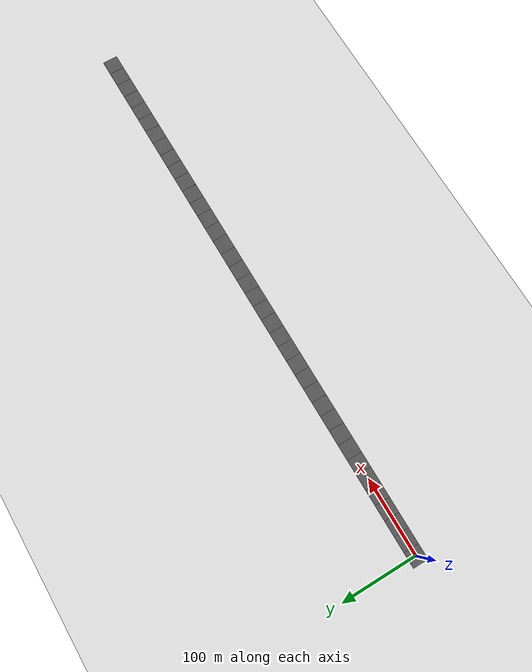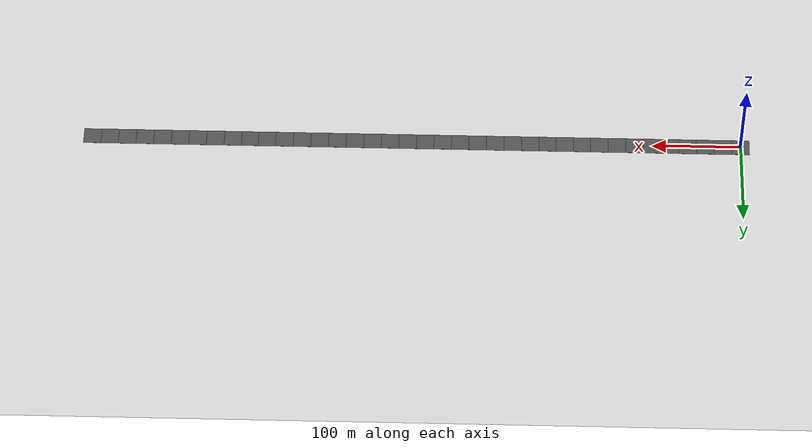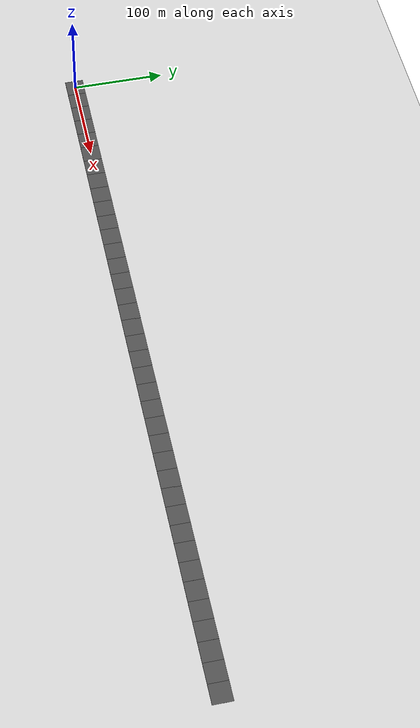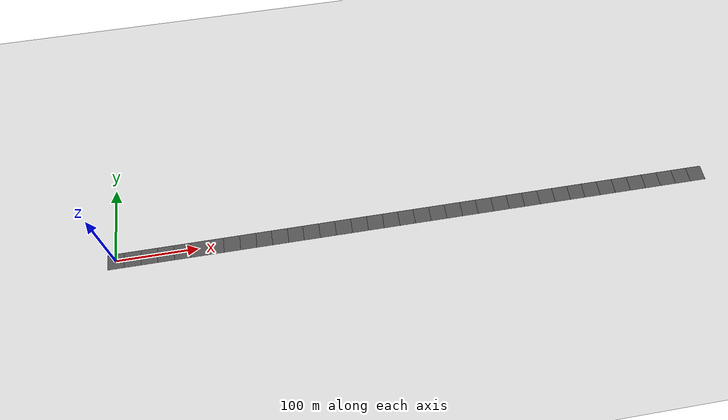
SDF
<sdf version="1.4">
 <world name="default">
  <light name="sun" type="directional">
   <pose>0 0 10 0 -0 0</pose>
   <diffuse>0.8 0.8 0.8 1</diffuse>
   <specular>0.2 0.2 0.2 1</specular>
   <attenuation>
    <range>1000</range>
    <constant>0.9</constant>
    <linear>0.01</linear>
    <quadratic>0.001</quadratic>
   </attenuation>
   <direction>-0.5 0.1 -0.9</direction>
  </light>
  <model name="ground_plane">
   <static>1</static>
   <link name="link">
    <collision name="collision">
     <geometry><plane><normal>0 0 1</normal><size>100 100</size></plane></geometry>
     <surface><friction><ode><mu>100</mu><mu2>50</mu2></ode></friction></surface>
    </collision>
    <visual name="visual">
     <cast_shadows>0</cast_shadows>
     <geometry><plane><normal>0 0 1</normal><size>100 100</size></plane></geometry>
     <material>
      <script><uri>file://media/materials/scripts/gazebo.material</uri><name>Gazebo/Grey</name></script>
     </material>
    </visual>
    <velocity_decay><linear>0</linear><angular>0</angular></velocity_decay>
   </link>
  </model>
  <physics type="ode">
   <max_step_size>0.001</max_step_size>
   <real_time_factor>1</real_time_factor>
   <real_time_update_rate>1000</real_time_update_rate>
   <gravity>0 0 -9.8</gravity>
  </physics>
  <scene><ambient>0.4 0.4 0.4 1</ambient><background>0.7 0.7 0.7 1</background><shadows>1</shadows></scene>
  <spherical_coordinates>
   <surface_model>EARTH_WGS84</surface_model>
   <latitude_deg>0</latitude_deg>
   <longitude_deg>0</longitude_deg>
   <elevation>0</elevation>
   <heading_deg>0</heading_deg>
  </spherical_coordinates>
  <model name="asphalt_plane">
   <static>1</static>
   <link name="link">
    <collision name="collision"><geometry><box><size>20 20 0.1</size></box></geometry></collision>
    <visual name="visual">
     <cast_shadows>0</cast_shadows>
     <geometry><box><size>20 20 0.1</size></box></geometry>
     <material>
      <script>
       <uri>model://asphalt_plane/materials/scripts</uri>
       <uri>model://asphalt_plane/materials/textures</uri>
       <name>vrc/asphalt</name>
      </script>
     </material>
    </visual>
    <velocity_decay><linear>0</linear><angular>0</angular></velocity_decay>
   </link>
  </model>
  <model name="asphalt_plane_0">
   <static>1</static>
   <link name="link">
    <collision name="collision"><geometry><box><size>20 20 0.1</size></box></geometry></collision>
    <visual name="visual">
     <cast_shadows>0</cast_shadows>
     <geometry><box><size>20 20 0.1</size></box></geometry>
     <material>
      <script>
       <uri>model://asphalt_plane/materials/scripts</uri>
       <uri>model://asphalt_plane/materials/textures</uri>
       <name>vrc/asphalt</name>
      </script>
     </material>
    </visual>
    <velocity_decay><linear>0</linear><angular>0</angular></velocity_decay>
   </link>
   <pose>20 0 0 0 -0 0</pose>
  </model>
  <light name="sun" type="directional">
   <pose>-4.56059 5 10 0 -0 0</pose>
   <diffuse>0.8 0.8 0.8 1</diffuse>
   <specular>0.2 0.2 0.2 1</specular>
   <attenuation>
    <range>1000</range>
    <constant>0.9</constant>
    <linear>0.01</linear>
    <quadratic>0.001</quadratic>
   </attenuation>
   <direction>-0.5 0.1 -0.9</direction>
  </light>
  <model name="asphalt_plane_8">
   <static>1</static>
   <link name="link">
    <collision name="collision"><geometry><box><size>20 20 0.1</size></box></geometry></collision>
    <visual name="visual">
     <cast_shadows>0</cast_shadows>
     <geometry><box><size>20 20 0.1</size></box></geometry>
     <material>
      <script>
       <uri>model://asphalt_plane/materials/scripts</uri>
       <uri>model://asphalt_plane/materials/textures</uri>
       <name>vrc/asphalt</name>
      </script>
     </material>
    </visual>
    <velocity_decay><linear>0</linear><angular>0</angular></velocity_decay>
   </link>
   <pose>40 0 0 0 -0 0</pose>
  </model>
  <model name="asphalt_plane_7">
   <static>1</static>
   <link name="link">
    <collision name="collision"><geometry><box><size>20 20 0.1</size></box></geometry></collision>
    <visual name="visual">
     <cast_shadows>0</cast_shadows>
     <geometry><box><size>20 20 0.1</size></box></geometry>
     <material>
      <script>
       <uri>model://asphalt_plane/materials/scripts</uri>
       <uri>model://asphalt_plane/materials/textures</uri>
       <name>vrc/asphalt</name>
      </script>
     </material>
    </visual>
    <velocity_decay><linear>0</linear><angular>0</angular></velocity_decay>
   </link>
   <pose>60 0 0 0 -0 0</pose>
  </model>
  <model name="asphalt_plane_26">
   <static>1</static>
   <link name="link">
    <collision name="collision"><geometry><box><size>20 20 0.1</size></box></geometry></collision>
    <visual name="visual">
     <cast_shadows>0</cast_shadows>
     <geometry><box><size>20 20 0.1</size></box></geometry>
     <material>
      <script>
       <uri>model://asphalt_plane/materials/scripts</uri>
       <uri>model://asphalt_plane/materials/textures</uri>
       <name>vrc/asphalt</name>
      </script>
     </material>
    </visual>
    <velocity_decay><linear>0</linear><angular>0</angular></velocity_decay>
   </link>
   <pose>80 0 0 0 -0 0</pose>
  </model>
  <model name="asphalt_plane_27">
   <static>1</static>
   <link name="link">
    <collision name="collision"><geometry><box><size>20 20 0.1</size></box></geometry></collision>
    <visual name="visual">
     <cast_shadows>0</cast_shadows>
     <geometry><box><size>20 20 0.1</size></box></geometry>
     <material>
      <script>
       <uri>model://asphalt_plane/materials/scripts</uri>
       <uri>model://asphalt_plane/materials/textures</uri>
       <name>vrc/asphalt</name>
      </script>
     </material>
    </visual>
    <velocity_decay><linear>0</linear><angular>0</angular></velocity_decay>
   </link>
   <pose>100 0 0 0 -0 0</pose>
  </model>
  <model name="asphalt_plane_28">
   <static>1</static>
   <link name="link">
    <collision name="collision"><geometry><box><size>20 20 0.1</size></box></geometry></collision>
    <visual name="visual">
     <cast_shadows>0</cast_shadows>
     <geometry><box><size>20 20 0.1</size></box></geometry>
     <material>
      <script>
       <uri>model://asphalt_plane/materials/scripts</uri>
       <uri>model://asphalt_plane/materials/textures</uri>
       <name>vrc/asphalt</name>
      </script>
     </material>
    </visual>
    <velocity_decay><linear>0</linear><angular>0</angular></velocity_decay>
   </link>
   <pose>120 0 0 0 -0 0</pose>
  </model>
  <model name="asphalt_plane_29">
   <static>1</static>
   <link name="link">
    <collision name="collision"><geometry><box><size>20 20 0.1</size></box></geometry></collision>
    <visual name="visual">
     <cast_shadows>0</cast_shadows>
     <geometry><box><size>20 20 0.1</size></box></geometry>
     <material>
      <script>
       <uri>model://asphalt_plane/materials/scripts</uri>
       <uri>model://asphalt_plane/materials/textures</uri>
       <name>vrc/asphalt</name>
      </script>
     </material>
    </visual>
    <velocity_decay><linear>0</linear><angular>0</angular></velocity_decay>
   </link>
   <pose>140 0 0 0 -0 0</pose>
  </model>
  <model name="asphalt_plane_30">
   <static>1</static>
   <link name="link">
    <collision name="collision"><geometry><box><size>20 20 0.1</size></box></geometry></collision>
    <visual name="visual">
     <cast_shadows>0</cast_shadows>
     <geometry><box><size>20 20 0.1</size></box></geometry>
     <material>
      <script>
       <uri>model://asphalt_plane/materials/scripts</uri>
       <uri>model://asphalt_plane/materials/textures</uri>
       <name>vrc/asphalt</name>
      </script>
     </material>
    </visual>
    <velocity_decay><linear>0</linear><angular>0</angular></velocity_decay>
   </link>
   <pose>160 0 0 0 -0 0</pose>
  </model>
  <model name="asphalt_plane_31">
   <static>1</static>
   <link name="link">
    <collision name="collision"><geometry><box><size>20 20 0.1</size></box></geometry></collision>
    <visual name="visual">
     <cast_shadows>0</cast_shadows>
     <geometry><box><size>20 20 0.1</size></box></geometry>
     <material>
      <script>
       <uri>model://asphalt_plane/materials/scripts</uri>
       <uri>model://asphalt_plane/materials/textures</uri>
       <name>vrc/asphalt</name>
      </script>
     </material>
    </visual>
    <velocity_decay><linear>0</linear><angular>0</angular></velocity_decay>
   </link>
   <pose>179.529 0 0 0 -0 0</pose>
  </model>
  <model name="asphalt_plane_32">
   <static>1</static>
   <link name="link">
    <collision name="collision"><geometry><box><size>20 20 0.1</size></box></geometry></collision>
    <visual name="visual">
     <cast_shadows>0</cast_shadows>
     <geometry><box><size>20 20 0.1</size></box></geometry>
     <material>
      <script>
       <uri>model://asphalt_plane/materials/scripts</uri>
       <uri>model://asphalt_plane/materials/textures</uri>
       <name>vrc/asphalt</name>
      </script>
     </material>
    </visual>
    <velocity_decay><linear>0</linear><angular>0</angular></velocity_decay>
   </link>
   <pose>199 0 0 0 -0 0</pose>
  </model>
  <model name="asphalt_plane_33">
   <static>1</static>
   <link name="link">
    <collision name="collision"><geometry><box><size>20 20 0.1</size></box></geometry></collision>
    <visual name="visual">
     <cast_shadows>0</cast_shadows>
     <geometry><box><size>20 20 0.1</size></box></geometry>
     <material>
      <script>
       <uri>model://asphalt_plane/materials/scripts</uri>
       <uri>model://asphalt_plane/materials/textures</uri>
       <name>vrc/asphalt</name>
      </script>
     </material>
    </visual>
    <velocity_decay><linear>0</linear><angular>0</angular></velocity_decay>
   </link>
   <pose>218 0 0 0 -0 0</pose>
  </model>
  <model name="asphalt_plane_34">
   <static>1</static>
   <link name="link">
    <collision name="collision"><geometry><box><size>20 20 0.1</size></box></geometry></collision>
    <visual name="visual">
     <cast_shadows>0</cast_shadows>
     <geometry><box><size>20 20 0.1</size></box></geometry>
     <material>
      <script>
       <uri>model://asphalt_plane/materials/scripts</uri>
       <uri>model://asphalt_plane/materials/textures</uri>
       <name>vrc/asphalt</name>
      </script>
     </material>
    </visual>
    <velocity_decay><linear>0</linear><angular>0</angular></velocity_decay>
   </link>
   <pose>238 0 0 0 -0 0</pose>
  </model>
  <model name="asphalt_plane_35">
   <static>1</static>
   <link name="link">
    <collision name="collision"><geometry><box><size>20 20 0.1</size></box></geometry></collision>
    <visual name="visual">
     <cast_shadows>0</cast_shadows>
     <geometry><box><size>20 20 0.1</size></box></geometry>
     <material>
      <script>
       <uri>model://asphalt_plane/materials/scripts</uri>
       <uri>model://asphalt_plane/materials/textures</uri>
       <name>vrc/asphalt</name>
      </script>
     </material>
    </visual>
    <velocity_decay><linear>0</linear><angular>0</angular></velocity_decay>
   </link>
   <pose>258 0 0 0 -0 0</pose>
  </model>
  <model name="asphalt_plane_36">
   <static>1</static>
   <link name="link">
    <collision name="collision"><geometry><box><size>20 20 0.1</size></box></geometry></collision>
    <visual name="visual">
     <cast_shadows>0</cast_shadows>
     <geometry><box><size>20 20 0.1</size></box></geometry>
     <material>
      <script>
       <uri>model://asphalt_plane/materials/scripts</uri>
       <uri>model://asphalt_plane/materials/textures</uri>
       <name>vrc/asphalt</name>
      </script>
     </material>
    </visual>
    <velocity_decay><linear>0</linear><angular>0</angular></velocity_decay>
   </link>
   <pose>278 0 0 0 -0 0</pose>
  </model>
  <model name="asphalt_plane_37">
   <static>1</static>
   <link name="link">
    <collision name="collision"><geometry><box><size>20 20 0.1</size></box></geometry></collision>
    <visual name="visual">
     <cast_shadows>0</cast_shadows>
     <geometry><box><size>20 20 0.1</size></box></geometry>
     <material>
      <script>
       <uri>model://asphalt_plane/materials/scripts</uri>
       <uri>model://asphalt_plane/materials/textures</uri>
       <name>vrc/asphalt</name>
      </script>
     </material>
    </visual>
    <velocity_decay><linear>0</linear><angular>0</angular></velocity_decay>
   </link>
   <pose>298 0 0 0 -0 0</pose>
  </model>
  <model name="asphalt_plane_38">
   <static>1</static>
   <link name="link">
    <collision name="collision"><geometry><box><size>20 20 0.1</size></box></geometry></collision>
    <visual name="visual">
     <cast_shadows>0</cast_shadows>
     <geometry><box><size>20 20 0.1</size></box></geometry>
     <material>
      <script>
       <uri>model://asphalt_plane/materials/scripts</uri>
       <uri>model://asphalt_plane/materials/textures</uri>
       <name>vrc/asphalt</name>
      </script>
     </material>
    </visual>
    <velocity_decay><linear>0</linear><angular>0</angular></velocity_decay>
   </link>
   <pose>318 0 0 0 -0 0</pose>
  </model>
  <model name="asphalt_plane_39">
   <static>1</static>
   <link name="link">
    <collision name="collision"><geometry><box><size>20 20 0.1</size></box></geometry></collision>
    <visual name="visual">
     <cast_shadows>0</cast_shadows>
     <geometry><box><size>20 20 0.1</size></box></geometry>
     <material>
      <script>
       <uri>model://asphalt_plane/materials/scripts</uri>
       <uri>model://asphalt_plane/materials/textures</uri>
       <name>vrc/asphalt</name>
      </script>
     </material>
    </visual>
    <velocity_decay><linear>0</linear><angular>0</angular></velocity_decay>
   </link>
   <pose>337.506 0 0 0 -0 0</pose>
  </model>
  <model name="asphalt_plane_40">
   <static>1</static>
   <link name="link">
    <collision name="collision"><geometry><box><size>20 20 0.1</size></box></geometry></collision>
    <visual name="visual">
     <cast_shadows>0</cast_shadows>
     <geometry><box><size>20 20 0.1</size></box></geometry>
     <material>
      <script>
       <uri>model://asphalt_plane/materials/scripts</uri>
       <uri>model://asphalt_plane/materials/textures</uri>
       <name>vrc/asphalt</name>
      </script>
     </material>
    </visual>
    <velocity_decay><linear>0</linear><angular>0</angular></velocity_decay>
   </link>
   <pose>357.494 0 0 0 -0 0</pose>
  </model>
  <model name="asphalt_plane_41">
   <static>1</static>
   <link name="link">
    <collision name="collision"><geometry><box><size>20 20 0.1</size></box></geometry></collision>
    <visual name="visual">
     <cast_shadows>0</cast_shadows>
     <geometry><box><size>20 20 0.1</size></box></geometry>
     <material>
      <script>
       <uri>model://asphalt_plane/materials/scripts</uri>
       <uri>model://asphalt_plane/materials/textures</uri>
       <name>vrc/asphalt</name>
      </script>
     </material>
    </visual>
    <velocity_decay><linear>0</linear><angular>0</angular></velocity_decay>
   </link>
   <pose>377 0 0 0 -0 0</pose>
  </model>
  <model name="asphalt_plane_42">
   <static>1</static>
   <link name="link">
    <collision name="collision"><geometry><box><size>20 20 0.1</size></box></geometry></collision>
    <visual name="visual">
     <cast_shadows>0</cast_shadows>
     <geometry><box><size>20 20 0.1</size></box></geometry>
     <material>
      <script>
       <uri>model://asphalt_plane/materials/scripts</uri>
       <uri>model://asphalt_plane/materials/textures</uri>
       <name>vrc/asphalt</name>
      </script>
     </material>
    </visual>
    <velocity_decay><linear>0</linear><angular>0</angular></velocity_decay>
   </link>
   <pose>397 0 0 0 -0 0</pose>
  </model>
  <model name="asphalt_plane_43">
   <static>1</static>
   <link name="link">
    <collision name="collision"><geometry><box><size>20 20 0.1</size></box></geometry></collision>
    <visual name="visual">
     <cast_shadows>0</cast_shadows>
     <geometry><box><size>20 20 0.1</size></box></geometry>
     <material>
      <script>
       <uri>model://asphalt_plane/materials/scripts</uri>
       <uri>model://asphalt_plane/materials/textures</uri>
       <name>vrc/asphalt</name>
      </script>
     </material>
    </visual>
    <velocity_decay><linear>0</linear><angular>0</angular></velocity_decay>
   </link>
   <pose>417 0 0 0 -0 0</pose>
  </model>
  <model name="asphalt_plane_44">
   <static>1</static>
   <link name="link">
    <collision name="collision"><geometry><box><size>20 20 0.1</size></box></geometry></collision>
    <visual name="visual">
     <cast_shadows>0</cast_shadows>
     <geometry><box><size>20 20 0.1</size></box></geometry>
     <material>
      <script>
       <uri>model://asphalt_plane/materials/scripts</uri>
       <uri>model://asphalt_plane/materials/textures</uri>
       <name>vrc/asphalt</name>
      </script>
     </material>
    </visual>
    <velocity_decay><linear>0</linear><angular>0</angular></velocity_decay>
   </link>
   <pose>437 0 0 0 -0 0</pose>
  </model>
  <model name="asphalt_plane_45">
   <static>1</static>
   <link name="link">
    <collision name="collision"><geometry><box><size>20 20 0.1</size></box></geometry></collision>
    <visual name="visual">
     <cast_shadows>0</cast_shadows>
     <geometry><box><size>20 20 0.1</size></box></geometry>
     <material>
      <script>
       <uri>model://asphalt_plane/materials/scripts</uri>
       <uri>model://asphalt_plane/materials/textures</uri>
       <name>vrc/asphalt</name>
      </script>
     </material>
    </visual>
    <velocity_decay><linear>0</linear><angular>0</angular></velocity_decay>
   </link>
   <pose>457 0 0 0 -0 0</pose>
  </model>
  <model name="asphalt_plane_46">
   <static>1</static>
   <link name="link">
    <collision name="collision"><geometry><box><size>20 20 0.1</size></box></geometry></collision>
    <visual name="visual">
     <cast_shadows>0</cast_shadows>
     <geometry><box><size>20 20 0.1</size></box></geometry>
     <material>
      <script>
       <uri>model://asphalt_plane/materials/scripts</uri>
       <uri>model://asphalt_plane/materials/textures</uri>
       <name>vrc/asphalt</name>
      </script>
     </material>
    </visual>
    <velocity_decay><linear>0</linear><angular>0</angular></velocity_decay>
   </link>
   <pose>477 0 0 0 -0 0</pose>
  </model>
  <model name="asphalt_plane_47">
   <static>1</static>
   <link name="link">
    <collision name="collision"><geometry><box><size>20 20 0.1</size></box></geometry></collision>
    <visual name="visual">
     <cast_shadows>0</cast_shadows>
     <geometry><box><size>20 20 0.1</size></box></geometry>
     <material>
      <script>
       <uri>model://asphalt_plane/materials/scripts</uri>
       <uri>model://asphalt_plane/materials/textures</uri>
       <name>vrc/asphalt</name>
      </script>
     </material>
    </visual>
    <velocity_decay><linear>0</linear><angular>0</angular></velocity_decay>
   </link>
   <pose>497 0 0 0 -0 0</pose>
  </model>
  <model name="asphalt_plane_48">
   <static>1</static>
   <link name="link">
    <collision name="collision"><geometry><box><size>20 20 0.1</size></box></geometry></collision>
    <visual name="visual">
     <cast_shadows>0</cast_shadows>
     <geometry><box><size>20 20 0.1</size></box></geometry>
     <material>
      <script>
       <uri>model://asphalt_plane/materials/scripts</uri>
       <uri>model://asphalt_plane/materials/textures</uri>
       <name>vrc/asphalt</name>
      </script>
     </material>
    </visual>
    <velocity_decay><linear>0</linear><angular>0</angular></velocity_decay>
   </link>
   <pose>517 0 0 0 -0 0</pose>
  </model>
  <model name="asphalt_plane_49">
   <static>1</static>
   <link name="link">
    <collision name="collision"><geometry><box><size>20 20 0.1</size></box></geometry></collision>
    <visual name="visual">
     <cast_shadows>0</cast_shadows>
     <geometry><box><size>20 20 0.1</size></box></geometry>
     <material>
      <script>
       <uri>model://asphalt_plane/materials/scripts</uri>
       <uri>model://asphalt_plane/materials/textures</uri>
       <name>vrc/asphalt</name>
      </script>
     </material>
    </visual>
    <velocity_decay><linear>0</linear><angular>0</angular></velocity_decay>
   </link>
   <pose>536.513 0 0 0 -0 0</pose>
  </model>
  <model name="asphalt_plane_50">
   <static>1</static>
   <link name="link">
    <collision name="collision"><geometry><box><size>20 20 0.1</size></box></geometry></collision>
    <visual name="visual">
     <cast_shadows>0</cast_shadows>
     <geometry><box><size>20 20 0.1</size></box></geometry>
     <material>
      <script>
       <uri>model://asphalt_plane/materials/scripts</uri>
       <uri>model://asphalt_plane/materials/textures</uri>
       <name>vrc/asphalt</name>
      </script>
     </material>
    </visual>
    <velocity_decay><linear>0</linear><angular>0</angular></velocity_decay>
   </link>
   <pose>556.477 0 0 0 -0 0</pose>
  </model>
  <model name="asphalt_plane_51">
   <static>1</static>
   <link name="link">
    <collision name="collision"><geometry><box><size>20 20 0.1</size></box></geometry></collision>
    <visual name="visual">
     <cast_shadows>0</cast_shadows>
     <geometry><box><size>20 20 0.1</size></box></geometry>
     <material>
      <script>
       <uri>model://asphalt_plane/materials/scripts</uri>
       <uri>model://asphalt_plane/materials/textures</uri>
       <name>vrc/asphalt</name>
      </script>
     </material>
    </visual>
    <velocity_decay><linear>0</linear><angular>0</angular></velocity_decay>
   </link>
   <pose>575.445 0 0 0 -0 0</pose>
  </model>
  <model name="asphalt_plane_52">
   <static>1</static>
   <link name="link">
    <collision name="collision"><geometry><box><size>20 20 0.1</size></box></geometry></collision>
    <visual name="visual">
     <cast_shadows>0</cast_shadows>
     <geometry><box><size>20 20 0.1</size></box></geometry>
     <material>
      <script>
       <uri>model://asphalt_plane/materials/scripts</uri>
       <uri>model://asphalt_plane/materials/textures</uri>
       <name>vrc/asphalt</name>
      </script>
     </material>
    </visual>
    <velocity_decay><linear>0</linear><angular>0</angular></velocity_decay>
   </link>
   <pose>595.429 0 0 0 -0 0</pose>
  </model>
  <model name="asphalt_plane_1">
   <static>1</static>
   <link name="link">
    <collision name="collision"><geometry><box><size>20 20 0.1</size></box></geometry></collision>
    <visual name="visual">
     <cast_shadows>0</cast_shadows>
     <geometry><box><size>20 20 0.1</size></box></geometry>
     <material>
      <script>
       <uri>model://asphalt_plane/materials/scripts</uri>
       <uri>model://asphalt_plane/materials/textures</uri>
       <name>vrc/asphalt</name>
      </script>
     </material>
    </visual>
    <velocity_decay><linear>0</linear><angular>0</angular></velocity_decay>
   </link>
   <pose>615.43 0 0 0 -0 0</pose>
  </model>
  <model name="asphalt_plane_3">
   <static>1</static>
   <link name="link">
    <collision name="collision"><geometry><box><size>20 20 0.1</size></box></geometry></collision>
    <visual name="visual">
     <cast_shadows>0</cast_shadows>
     <geometry><box><size>20 20 0.1</size></box></geometry>
     <material>
      <script>
       <uri>model://asphalt_plane/materials/scripts</uri>
       <uri>model://asphalt_plane/materials/textures</uri>
       <name>vrc/asphalt</name>
      </script>
     </material>
    </visual>
    <velocity_decay><linear>0</linear><angular>0</angular></velocity_decay>
   </link>
   <pose>635.441 0 0 0 -0 0</pose>
  </model>
  <model name="asphalt_plane_4">
   <static>1</static>
   <link name="link">
    <collision name="collision"><geometry><box><size>20 20 0.1</size></box></geometry></collision>
    <visual name="visual">
     <cast_shadows>0</cast_shadows>
     <geometry><box><size>20 20 0.1</size></box></geometry>
     <material>
      <script>
       <uri>model://asphalt_plane/materials/scripts</uri>
       <uri>model://asphalt_plane/materials/textures</uri>
       <name>vrc/asphalt</name>
      </script>
     </material>
    </visual>
    <velocity_decay><linear>0</linear><angular>0</angular></velocity_decay>
   </link>
   <pose>655.429 0 0 0 -0 0</pose>
  </model>
  <model name="asphalt_plane_5">
   <static>1</static>
   <link name="link">
    <collision name="collision"><geometry><box><size>20 20 0.1</size></box></geometry></collision>
    <visual name="visual">
     <cast_shadows>0</cast_shadows>
     <geometry><box><size>20 20 0.1</size></box></geometry>
     <material>
      <script>
       <uri>model://asphalt_plane/materials/scripts</uri>
       <uri>model://asphalt_plane/materials/textures</uri>
       <name>vrc/asphalt</name>
      </script>
     </material>
    </visual>
    <velocity_decay><linear>0</linear><angular>0</angular></velocity_decay>
   </link>
   <pose>675.426 0 0 0 -0 0</pose>
  </model>
  <model name="asphalt_plane_6">
   <static>1</static>
   <link name="link">
    <collision name="collision"><geometry><box><size>20 20 0.1</size></box></geometry></collision>
    <visual name="visual">
     <cast_shadows>0</cast_shadows>
     <geometry><box><size>20 20 0.1</size></box></geometry>
     <material>
      <script>
       <uri>model://asphalt_plane/materials/scripts</uri>
       <uri>model://asphalt_plane/materials/textures</uri>
       <name>vrc/asphalt</name>
      </script>
     </material>
    </visual>
    <velocity_decay><linear>0</linear><angular>0</angular></velocity_decay>
   </link>
   <pose>695.435 0 0 0 -0 0</pose>
  </model>
  <model name="asphalt_plane_9">
   <static>1</static>
   <link name="link">
    <collision name="collision"><geometry><box><size>20 20 0.1</size></box></geometry></collision>
    <visual name="visual">
     <cast_shadows>0</cast_shadows>
     <geometry><box><size>20 20 0.1</size></box></geometry>
     <material>
      <script>
       <uri>model://asphalt_plane/materials/scripts</uri>
       <uri>model://asphalt_plane/materials/textures</uri>
       <name>vrc/asphalt</name>
      </script>
     </material>
    </visual>
    <velocity_decay><linear>0</linear><angular>0</angular></velocity_decay>
   </link>
   <pose>715.403 0 0 0 -0 0</pose>
  </model>
  <model name="asphalt_plane_10">
   <static>1</static>
   <link name="link">
    <collision name="collision"><geometry><box><size>20 20 0.1</size></box></geometry></collision>
    <visual name="visual">
     <cast_shadows>0</cast_shadows>
     <geometry><box><size>20 20 0.1</size></box></geometry>
     <material>
      <script>
       <uri>model://asphalt_plane/materials/scripts</uri>
       <uri>model://asphalt_plane/materials/textures</uri>
       <name>vrc/asphalt</name>
      </script>
     </material>
    </visual>
    <velocity_decay><linear>0</linear><angular>0</angular></velocity_decay>
   </link>
   <pose>735 0 0 0 -0 0</pose>
  </model>
 </world>
</sdf>
